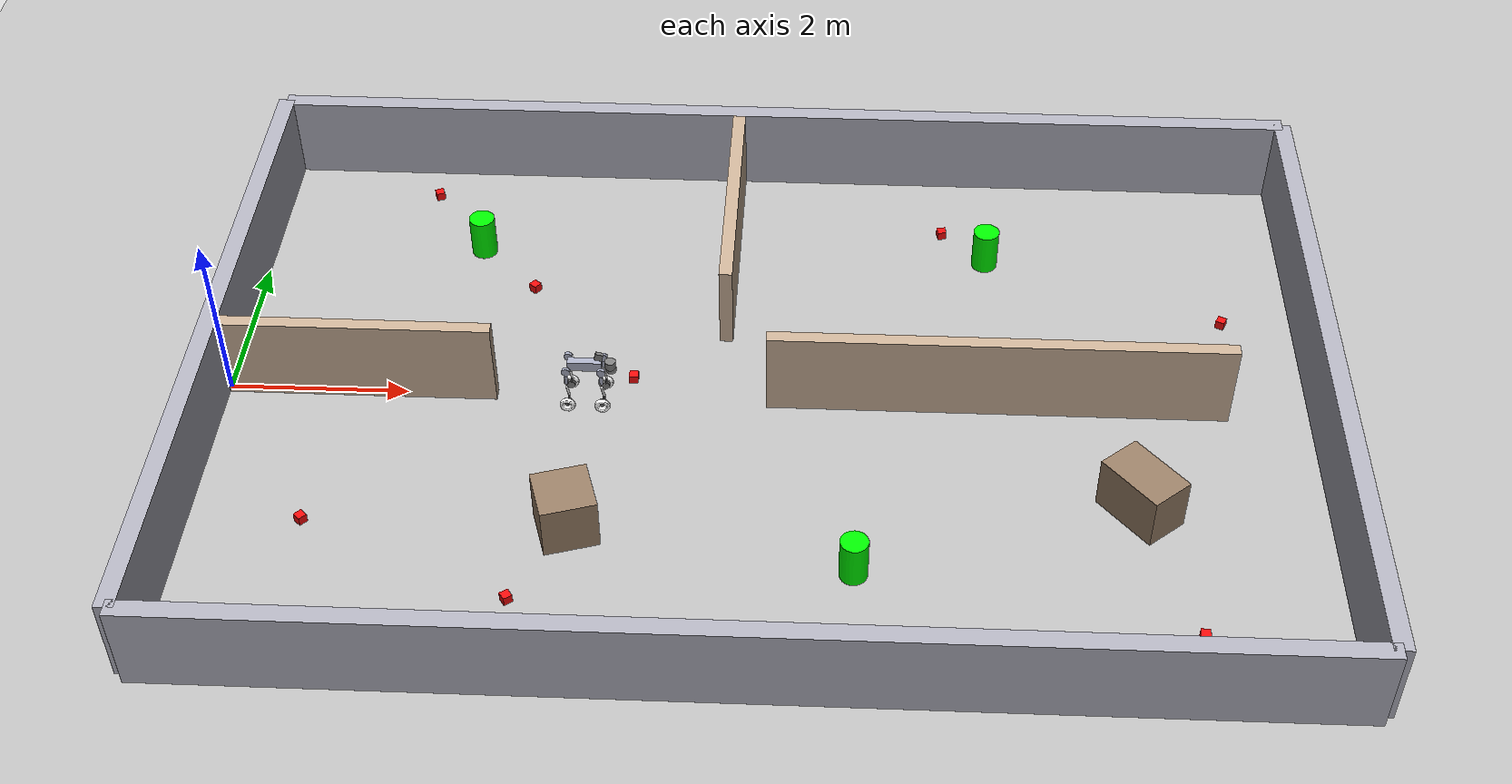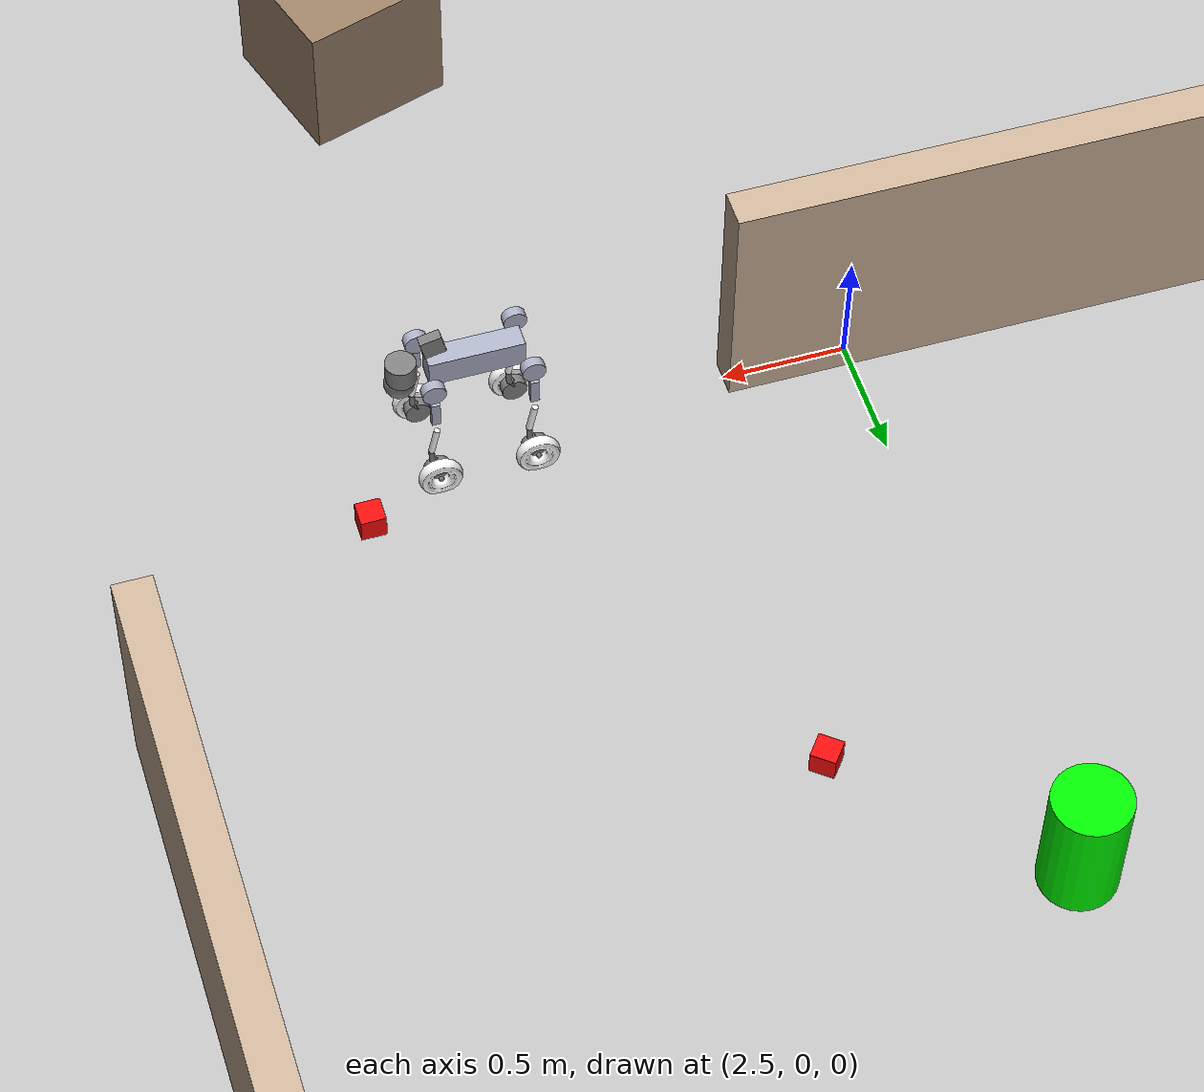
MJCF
<mujoco model="vlm_exploration_scene">
  <compiler angle="radian" meshdir="../../../../go2_gazebo_sim/share/go2_gazebo_sim/mujoco/meshes"/>

  <option timestep="0.002" gravity="0 0 -9.81" integrator="implicitfast"/>

  <default>
    <joint damping="0.5" armature="0.01"/>
    <geom friction="1.0 0.005 0.001" condim="3" conaffinity="1" contype="1"/>
    <motor ctrllimited="true"/>
  </default>

  <asset>
    <!-- Robot mesh assets -->
    <mesh name="left_wheel" file="left_wheel.stl"/>
    <mesh name="right_wheel" file="right_wheel.stl"/>

    <!-- World texture / material assets -->
    <texture name="grid" type="2d" builtin="checker"
             rgb1="0.8 0.8 0.8" rgb2="0.7 0.7 0.7"
             width="512" height="512"/>
    <material name="ground_mat" texture="grid" texrepeat="10 10"/>
    <material name="wall_mat" rgba="0.7 0.7 0.75 1"/>
    <material name="divider_mat" rgba="0.8 0.7 0.6 1"/>
    <material name="green_mat" rgba="0.0 1.0 0.0 1" specular="0.3"/>
    <material name="obstacle_mat" rgba="0.6 0.5 0.4 1"/>
    <material name="red_mat" rgba="1.0 0.05 0.05 1" specular="0.3"/>
  </asset>

  <worldbody>
    <!-- Lighting from VLM exploration world -->
    <light pos="0 0 10" dir="-0.5 0.1 -0.9" diffuse="0.8 0.8 0.8" castshadow="true"/>

    <!-- Ground plane from VLM exploration world -->
    <geom name="ground" type="plane" size="50 50 0.1" material="ground_mat"
          contype="1" conaffinity="1"/>

    <!-- === Outer walls === -->
    <!-- North wall: SDF size 12.2 0.2 1.0 -> half 6.1 0.1 0.5 -->
    <geom name="wall_north" type="box" pos="6.0 4.1 0.5"
          size="6.1 0.1 0.5" material="wall_mat"
          contype="1" conaffinity="1"/>
    <!-- South wall -->
    <geom name="wall_south" type="box" pos="6.0 -4.1 0.5"
          size="6.1 0.1 0.5" material="wall_mat"
          contype="1" conaffinity="1"/>
    <!-- West wall: SDF size 0.2 8.2 1.0 -> half 0.1 4.1 0.5 -->
    <geom name="wall_west" type="box" pos="-0.1 0 0.5"
          size="0.1 4.1 0.5" material="wall_mat"
          contype="1" conaffinity="1"/>
    <!-- East wall -->
    <geom name="wall_east" type="box" pos="12.1 0 0.5"
          size="0.1 4.1 0.5" material="wall_mat"
          contype="1" conaffinity="1"/>

    <!-- === Central corridor dividers === -->
    <!-- West segment: SDF size 3.0 0.15 1.0 -> half 1.5 0.075 0.5 -->
    <geom name="divider_h_west" type="box" pos="1.5 0 0.5"
          size="1.5 0.075 0.5" material="divider_mat"
          contype="1" conaffinity="1"/>
    <!-- East segment: SDF size 5.1 0.15 1.0 -> half 2.55 0.075 0.5 -->
    <geom name="divider_h_east" type="box" pos="8.55 0 0.5"
          size="2.55 0.075 0.5" material="divider_mat"
          contype="1" conaffinity="1"/>
    <!-- Vertical divider (Room A / Room B): SDF size 0.15 3.0 1.0 -> half 0.075 1.5 0.5 -->
    <geom name="divider_v_north" type="box" pos="5.5 2.5 0.5"
          size="0.075 1.5 0.5" material="divider_mat"
          contype="1" conaffinity="1"/>

    <!-- === Green marker cylinders (VLM targets) === -->
    <!-- Green Marker 1: Room A (north-west) -->
    <geom name="green_marker_1" type="cylinder" pos="2.5 2.5 0.25"
          size="0.15 0.25" material="green_mat"
          contype="1" conaffinity="1"/>
    <!-- Green Marker 2: Room B center -->
    <geom name="green_marker_2" type="cylinder" pos="8.5 2.5 0.25"
          size="0.15 0.25" material="green_mat"
          contype="1" conaffinity="1"/>
    <!-- Green Marker 3: Room C/D (south) -->
    <geom name="green_marker_3" type="cylinder" pos="7.0 -2.5 0.25"
          size="0.15 0.25" material="green_mat"
          contype="1" conaffinity="1"/>

    <!-- === Box obstacles === -->
    <!-- box_obstacle_1: SDF size 0.6 0.6 0.6 -> half 0.3 0.3 0.3, yaw=0.3 -->
    <geom name="box_obstacle_1" type="box" pos="4.0 -2.0 0.3"
          size="0.3 0.3 0.3" euler="0 0 0.3" material="obstacle_mat"
          contype="1" conaffinity="1"/>
    <!-- box_obstacle_2: SDF size 0.5 0.8 0.6 -> half 0.25 0.4 0.3, yaw=0.7 -->
    <geom name="box_obstacle_2" type="box" pos="10.0 -1.5 0.3"
          size="0.25 0.4 0.3" euler="0 0 0.7" material="obstacle_mat"
          contype="1" conaffinity="1"/>

    <!-- === Red blocks (0.1m cubes -> half-size 0.05) === -->
    <!-- Room A: tucked against north wall -->
    <geom name="red_block_1" type="box" pos="1.8 3.5 0.05"
          size="0.05 0.05 0.05" euler="0 0 0.4" material="red_mat"
          contype="1" conaffinity="1"/>
    <!-- Room A: floor center -->
    <geom name="red_block_2" type="box" pos="3.2 1.8 0.05"
          size="0.05 0.05 0.05" euler="0 0 0.9" material="red_mat"
          contype="1" conaffinity="1"/>
    <!-- Room B: west side (near divider) -->
    <geom name="red_block_3" type="box" pos="8.0 3.0 0.05"
          size="0.05 0.05 0.05" euler="0 0 0.2" material="red_mat"
          contype="1" conaffinity="1"/>
    <!-- Room B: east side -->
    <geom name="red_block_4" type="box" pos="11.2 1.5 0.05"
          size="0.05 0.05 0.05" euler="0 0 1.1" material="red_mat"
          contype="1" conaffinity="1"/>
    <!-- Corridor: on the floor mid-passage -->
    <geom name="red_block_5" type="box" pos="4.5 0.3 0.05"
          size="0.05 0.05 0.05" material="red_mat"
          contype="1" conaffinity="1"/>
    <!-- Room C/D south: near box_obstacle_1 -->
    <geom name="red_block_6" type="box" pos="3.5 -3.0 0.05"
          size="0.05 0.05 0.05" euler="0 0 0.6" material="red_mat"
          contype="1" conaffinity="1"/>
    <!-- Room D: far east -->
    <geom name="red_block_7" type="box" pos="10.5 -3.2 0.05"
          size="0.05 0.05 0.05" euler="0 0 1.5" material="red_mat"
          contype="1" conaffinity="1"/>
    <!-- Room C: west side -->
    <geom name="red_block_8" type="box" pos="1.2 -2.0 0.05"
          size="0.05 0.05 0.05" euler="0 0 0.8" material="red_mat"
          contype="1" conaffinity="1"/>

    <!-- === Go2W Robot === -->
    <!-- Spawned at x=4.0, y=0, z=0.5 (corridor center, clear of horizontal dividers) -->
    <body name="base_link" pos="4.0 0 0.5">
      <freejoint name="root"/>
      <inertial pos="0.021112 0 -0.005366" mass="6.921"
                fullinertia="0.02448 0.098077 0.107 0.00012166 0.0014849 -3.12e-05"/>
      <!-- Base collision box -->
      <geom name="base_collision" size="0.1881 0.04675 0.057" type="box" rgba="0.671705 0.692426 0.77427 1"/>
      <!-- Head upper -->
      <geom size="0.06 0.045" pos="0.285 0 0.01" type="cylinder" contype="0" conaffinity="0"/>
      <!-- Head lower -->
      <geom size="0.06" pos="0.293 0 -0.06" contype="0" conaffinity="0"/>
      <!-- LiDAR mount -->
      <geom size="0.043 0.043 0.021" pos="0.16143 0 0.12262"
            quat="-0.0800485 0.0800501 0.702563 0.70256" type="box" contype="0" conaffinity="0"/>

      <!-- IMU site (on base body) -->
      <site name="imu_site" pos="0.16143 0 0.09787" size="0.01"/>

      <!-- Camera site (front-facing) -->
      <camera name="front_camera" pos="0.3 0 0.0" euler="0 0 0" fovy="120"
              resolution="1280 720" mode="fixed"/>

      <!-- ====== Front-Left leg ====== -->
      <body name="FL_hip" pos="0.1934 0.0465 0">
        <inertial pos="-0.0054 0.00194 -0.000105" quat="0.497014 0.499245 0.505462 0.498237"
                  mass="0.678" diaginertia="0.00088403 0.000596003 0.000479967"/>
        <joint name="FL_hip_joint" axis="1 0 0" range="-1.0472 1.0472"/>
        <geom size="0.046 0.02" pos="0 0.08 0" quat="0.707107 0.707107 0 0" type="cylinder"
              rgba="0.671705 0.692426 0.77427 1"/>
        <body name="FL_thigh" pos="0 0.0955 0">
          <inertial pos="-0.00374 -0.0223 -0.0327" quat="0.829533 0.0847635 -0.0200632 0.551623"
                    mass="1.152" diaginertia="0.00594973 0.00584149 0.000878787"/>
          <joint name="FL_thigh_joint" axis="0 1 0" range="-1.5708 3.4907"/>
          <geom size="0.055 0.01225 0.017" pos="0 0 -0.1065" quat="0.707107 0 0.707107 0"
                type="box" rgba="0.671705 0.692426 0.77427 1"/>
          <body name="FL_calf" pos="0 0 -0.213">
            <inertial pos="-0.00583047 -0.000177199 -0.202827" quat="0.706542 0.0341434 0.029565 0.706229"
                      mass="0.847352" diaginertia="0.00439089 0.00374067 0.0010673"/>
            <joint name="FL_calf_joint" axis="0 1 0" range="-2.7227 -0.83776"/>
            <geom size="0.012 0.06" pos="0.008 0 -0.06" quat="0.994493 0 -0.104807 0" type="cylinder" rgba="1 1 1 1"/>
            <geom size="0.011 0.0325" pos="0.02 0 -0.148" quat="0.999688 0 0.0249974 0" type="cylinder"/>
            <geom size="0.0155 0.015" pos="0.00801333 0 -0.18745" quat="0.965093 0 0.261909 0" type="cylinder"/>
            <geom size="0.05 0.025" pos="0 0.01 -0.2264" quat="0.707107 0.707107 0 0" type="cylinder"/>
            <body name="FL_foot" pos="0 0 -0.2264">
              <inertial pos="0 0.06 0" quat="0.707107 0 0 0.707107" mass="0.52" diaginertia="0.0012 0.0007 0.0007"/>
              <joint name="FL_foot_joint" axis="0 1 0"/>
              <geom type="mesh" rgba="1 1 1 1" mesh="left_wheel"/>
              <site name="FL_foot_site" pos="0 0.06 0" size="0.01"/>
            </body>
          </body>
        </body>
      </body>

      <!-- ====== Front-Right leg ====== -->
      <body name="FR_hip" pos="0.1934 -0.0465 0">
        <inertial pos="-0.0054 -0.00194 -0.000105" quat="0.498237 0.505462 0.499245 0.497014"
                  mass="0.678" diaginertia="0.00088403 0.000596003 0.000479967"/>
        <joint name="FR_hip_joint" axis="1 0 0" range="-1.0472 1.0472"/>
        <geom size="0.046 0.02" pos="0 -0.08 0" quat="0.707107 0.707107 0 0" type="cylinder"
              rgba="0.671705 0.692426 0.77427 1"/>
        <body name="FR_thigh" pos="0 -0.0955 0">
          <inertial pos="-0.00374 0.0223 -0.0327" quat="0.551623 -0.0200632 0.0847635 0.829533"
                    mass="1.152" diaginertia="0.00594973 0.00584149 0.000878787"/>
          <joint name="FR_thigh_joint" axis="0 1 0" range="-1.5708 3.4907"/>
          <geom size="0.055 0.01225 0.017" pos="0 0 -0.1065" quat="0.707107 0 0.707107 0"
                type="box" rgba="0.671705 0.692426 0.77427 1"/>
          <body name="FR_calf" pos="0 0 -0.213">
            <inertial pos="0.00941703 0.000177199 -0.202827" quat="0.706926 -0.0108701 -0.00627168 0.707176"
                      mass="0.847352" diaginertia="0.00434456 0.00372059 0.00104105"/>
            <joint name="FR_calf_joint" axis="0 1 0" range="-2.7227 -0.83776"/>
            <geom size="0.013 0.06" pos="0.01 0 -0.06" quat="0.995004 0 -0.0998334 0" type="cylinder" rgba="1 1 1 1"/>
            <geom size="0.011 0.0325" pos="0.02 0 -0.148" quat="0.999688 0 0.0249974 0" type="cylinder"/>
            <geom size="0.0155 0.015" pos="0.00801333 0 -0.18745" quat="0.965093 0 0.261909 0" type="cylinder"/>
            <geom size="0.05 0.025" pos="0 -0.01 -0.2264" quat="0.707107 0.707107 0 0" type="cylinder"/>
            <body name="FR_foot" pos="0 0 -0.2264">
              <inertial pos="0 -0.06 0" quat="0.707107 0 0 0.707107" mass="0.52" diaginertia="0.0012 0.0007 0.0007"/>
              <joint name="FR_foot_joint" axis="0 1 0"/>
              <geom type="mesh" rgba="1 1 1 1" mesh="right_wheel"/>
              <site name="FR_foot_site" pos="0 -0.06 0" size="0.01"/>
            </body>
          </body>
        </body>
      </body>

      <!-- ====== Rear-Left leg ====== -->
      <body name="RL_hip" pos="-0.1934 0.0465 0">
        <inertial pos="0.0054 0.00194 -0.000105" quat="0.505462 0.498237 0.497014 0.499245"
                  mass="0.678" diaginertia="0.00088403 0.000596003 0.000479967"/>
        <joint name="RL_hip_joint" axis="1 0 0" range="-1.0472 1.0472"/>
        <geom size="0.046 0.02" pos="0 0.08 0" quat="0.707107 0.707107 0 0" type="cylinder"
              rgba="0.671705 0.692426 0.77427 1"/>
        <body name="RL_thigh" pos="0 0.0955 0">
          <inertial pos="-0.00374 -0.0223 -0.0327" quat="0.829533 0.0847635 -0.0200632 0.551623"
                    mass="1.152" diaginertia="0.00594973 0.00584149 0.000878787"/>
          <joint name="RL_thigh_joint" axis="0 1 0" range="-0.5236 4.5379"/>
          <geom size="0.055 0.01225 0.017" pos="0 0 -0.1065" quat="0.707107 0 0.707107 0"
                type="box" rgba="0.671705 0.692426 0.77427 1"/>
          <body name="RL_calf" pos="0 0 -0.213">
            <inertial pos="-0.00583047 -0.000177199 -0.202827" quat="0.706542 0.0341434 0.029565 0.706229"
                      mass="0.847352" diaginertia="0.00439089 0.00374067 0.0010673"/>
            <joint name="RL_calf_joint" axis="0 1 0" range="-2.7227 -0.83776"/>
            <geom size="0.013 0.06" pos="0.01 0 -0.06" quat="0.995004 0 -0.0998334 0" type="cylinder" rgba="1 1 1 1"/>
            <geom size="0.011 0.0325" pos="0.02 0 -0.148" quat="0.999688 0 0.0249974 0" type="cylinder"/>
            <geom size="0.0155 0.015" pos="0.00801333 0 -0.18745" quat="0.965093 0 0.261909 0" type="cylinder"/>
            <geom size="0.05 0.025" pos="0 0.01 -0.2264" quat="0.707107 0.707107 0 0" type="cylinder"/>
            <body name="RL_foot" pos="0 0 -0.2264">
              <inertial pos="0 0.06 0" quat="0.707107 0 0 0.707107" mass="0.52" diaginertia="0.0012 0.0007 0.0007"/>
              <joint name="RL_foot_joint" axis="0 1 0"/>
              <geom type="mesh" rgba="1 1 1 1" mesh="left_wheel"/>
              <site name="RL_foot_site" pos="0 0.06 0" size="0.01"/>
            </body>
          </body>
        </body>
      </body>

      <!-- ====== Rear-Right leg ====== -->
      <body name="RR_hip" pos="-0.1934 -0.0465 0">
        <inertial pos="0.0054 -0.00194 -0.000105" quat="0.499245 0.497014 0.498237 0.505462"
                  mass="0.678" diaginertia="0.00088403 0.000596003 0.000479967"/>
        <joint name="RR_hip_joint" axis="1 0 0" range="-1.0472 1.0472"/>
        <geom size="0.046 0.02" pos="0 -0.08 0" quat="0.707107 0.707107 0 0" type="cylinder"
              rgba="0.671705 0.692426 0.77427 1"/>
        <body name="RR_thigh" pos="0 -0.0955 0">
          <inertial pos="-0.00374 0.0223 -0.0327" quat="0.551623 -0.0200632 0.0847635 0.829533"
                    mass="1.152" diaginertia="0.00594973 0.00584149 0.000878787"/>
          <joint name="RR_thigh_joint" axis="0 1 0" range="-0.5236 4.5379"/>
          <geom size="0.055 0.01225 0.017" pos="0 0 -0.1065" quat="0.707107 0 0.707107 0"
                type="box" rgba="0.671705 0.692426 0.77427 1"/>
          <body name="RR_calf" pos="0 0 -0.213">
            <inertial pos="0.00941703 0.000177199 -0.202827" quat="0.706926 -0.0108701 -0.00627168 0.707176"
                      mass="0.847352" diaginertia="0.00434456 0.00372059 0.00104105"/>
            <joint name="RR_calf_joint" axis="0 1 0" range="-2.7227 -0.83776"/>
            <geom size="0.013 0.06" pos="0.01 0 -0.06" quat="0.995004 0 -0.0998334 0" type="cylinder" rgba="1 1 1 1"/>
            <geom size="0.011 0.0325" pos="0.02 0 -0.148" quat="0.999688 0 0.0249974 0" type="cylinder"/>
            <geom size="0.0155 0.015" pos="0.00801333 0 -0.18745" quat="0.965093 0 0.261909 0" type="cylinder"/>
            <geom size="0.05 0.025" pos="0 -0.01 -0.2264" quat="0.707107 0.707107 0 0" type="cylinder"/>
            <body name="RR_foot" pos="0 0 -0.2264">
              <inertial pos="0 -0.06 0" quat="0.707107 0 0 0.707107" mass="0.52" diaginertia="0.0012 0.0007 0.0007"/>
              <joint name="RR_foot_joint" axis="0 1 0"/>
              <geom type="mesh" rgba="1 1 1 1" mesh="right_wheel"/>
              <site name="RR_foot_site" pos="0 -0.06 0" size="0.01"/>
            </body>
          </body>
        </body>
      </body>
    </body>
  </worldbody>

  <!-- Actuators: effort for leg joints, velocity for wheel joints -->
  <actuator>
    <!-- Hip joints (effort-controlled) -->
    <motor name="FL_hip_motor" joint="FL_hip_joint" ctrlrange="-23.7 23.7" gear="1"/>
    <motor name="FR_hip_motor" joint="FR_hip_joint" ctrlrange="-23.7 23.7" gear="1"/>
    <motor name="RL_hip_motor" joint="RL_hip_joint" ctrlrange="-23.7 23.7" gear="1"/>
    <motor name="RR_hip_motor" joint="RR_hip_joint" ctrlrange="-23.7 23.7" gear="1"/>
    <!-- Thigh joints (effort-controlled) -->
    <motor name="FL_thigh_motor" joint="FL_thigh_joint" ctrlrange="-23.7 23.7" gear="1"/>
    <motor name="FR_thigh_motor" joint="FR_thigh_joint" ctrlrange="-23.7 23.7" gear="1"/>
    <motor name="RL_thigh_motor" joint="RL_thigh_joint" ctrlrange="-23.7 23.7" gear="1"/>
    <motor name="RR_thigh_motor" joint="RR_thigh_joint" ctrlrange="-23.7 23.7" gear="1"/>
    <!-- Calf joints (effort-controlled, higher torque) -->
    <motor name="FL_calf_motor" joint="FL_calf_joint" ctrlrange="-35.55 35.55" gear="1"/>
    <motor name="FR_calf_motor" joint="FR_calf_joint" ctrlrange="-35.55 35.55" gear="1"/>
    <motor name="RL_calf_motor" joint="RL_calf_joint" ctrlrange="-35.55 35.55" gear="1"/>
    <motor name="RR_calf_motor" joint="RR_calf_joint" ctrlrange="-35.55 35.55" gear="1"/>
    <!-- Wheel joints (velocity-controlled) -->
    <velocity name="FL_wheel_motor" joint="FL_foot_joint" ctrlrange="-23.7 23.7" kv="5.0"/>
    <velocity name="FR_wheel_motor" joint="FR_foot_joint" ctrlrange="-23.7 23.7" kv="5.0"/>
    <velocity name="RL_wheel_motor" joint="RL_foot_joint" ctrlrange="-23.7 23.7" kv="5.0"/>
    <velocity name="RR_wheel_motor" joint="RR_foot_joint" ctrlrange="-23.7 23.7" kv="5.0"/>
  </actuator>

  <!-- Sensors -->
  <sensor>
    <!-- IMU -->
    <accelerometer name="imu_accel" site="imu_site"/>
    <gyro name="imu_gyro" site="imu_site"/>
    <!-- Foot contact (touch sensors) -->
    <touch name="FL_foot_contact" site="FL_foot_site"/>
    <touch name="FR_foot_contact" site="FR_foot_site"/>
    <touch name="RL_foot_contact" site="RL_foot_site"/>
    <touch name="RR_foot_contact" site="RR_foot_site"/>
    <!-- Base body state (ground truth) -->
    <framepos name="base_pos" objtype="body" objname="base_link"/>
    <framequat name="base_quat" objtype="body" objname="base_link"/>
    <framelinvel name="base_linvel" objtype="body" objname="base_link"/>
    <frameangvel name="base_angvel" objtype="body" objname="base_link"/>
  </sensor>
</mujoco>
